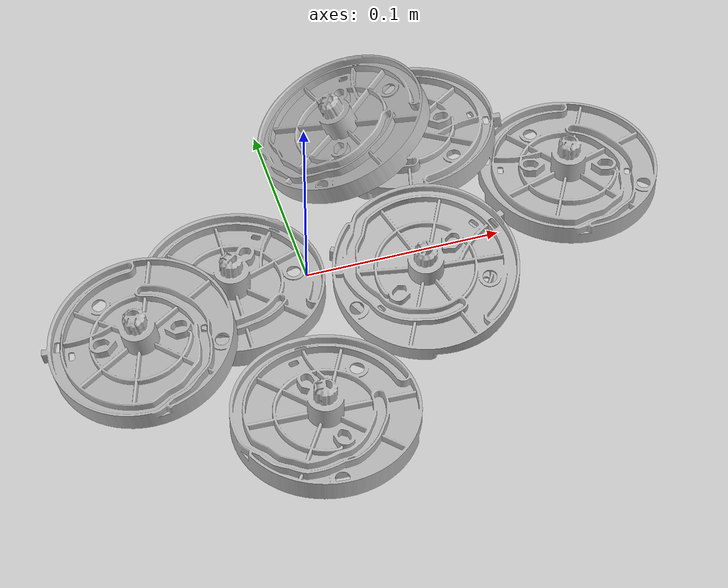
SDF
<sdf version="1.7">
 <world name="default">
  <light name="sun" type="directional">
   <pose>0 0 10 0 -0 0</pose>
   <diffuse>0.8 0.8 0.8 1</diffuse>
   <specular>0.2 0.2 0.2 1</specular>
   <attenuation>
    <range>1000</range>
    <constant>0.9</constant>
    <linear>0.01</linear>
    <quadratic>0.001</quadratic>
   </attenuation>
   <direction>-0.5 0.1 -0.9</direction>
   <spot><inner_angle>0</inner_angle><outer_angle>0</outer_angle><falloff>0</falloff></spot>
  </light>
  <model name="ground_plane">
   <static>1</static>
   <link name="link">
    <collision name="collision">
     <geometry><plane><normal>0 0 1</normal><size>100 100</size></plane></geometry>
     <surface>
      <contact><collide_bitmask>65535</collide_bitmask></contact>
      <friction><ode><mu>100</mu><mu2>50</mu2></ode></friction>
     </surface>
    </collision>
    <visual name="visual">
     <cast_shadows>0</cast_shadows>
     <geometry><plane><normal>0 0 1</normal><size>100 100</size></plane></geometry>
     <material>
      <script><uri>file://media/materials/scripts/gazebo.material</uri><name>Gazebo/Grey</name></script>
     </material>
    </visual>
   </link>
  </model>
  <gravity>0 0 -9.8</gravity>
  <magnetic_field>6e-06 2.3e-05 -4.2e-05</magnetic_field>
  <atmosphere type="adiabatic"/>
  <physics type="ode">
   <max_step_size>0.001</max_step_size>
   <real_time_factor>1</real_time_factor>
   <real_time_update_rate>1000</real_time_update_rate>
  </physics>
  <scene><ambient>0.4 0.4 0.4 1</ambient><background>0.7 0.7 0.7 1</background><shadows>1</shadows></scene>
  <spherical_coordinates>
   <surface_model>EARTH_WGS84</surface_model>
   <latitude_deg>0</latitude_deg>
   <longitude_deg>0</longitude_deg>
   <elevation>0</elevation>
   <heading_deg>0</heading_deg>
  </spherical_coordinates>
  <model name="HV8">
   <pose>0.146724 0.026027 4e-06 3.4e-05 -0.000127 1.30733</pose>
   <static>0</static>
   <link name="HV8">
    <inertial>
     <mass>0.2</mass>
     <inertia><ixx>0.001</ixx><ixy>0</ixy><ixz>0</ixz><iyy>0.001</iyy><iyz>0</iyz><izz>0.001</izz></inertia>
    </inertial>
    <collision name="collishin">
     <geometry><mesh><uri>model://HV8/meshes/HV8_1.stl</uri></mesh></geometry>
    </collision>
    <visual name="visual"><geometry><mesh><uri>model://HV8/meshes/HV8_1.stl</uri></mesh></geometry></visual>
   </link>
  </model>
  <model name="HV8_0">
   <pose>-0.089693 -0.03049 0.008632 -0.164191 -0.095968 1.47064</pose>
   <static>0</static>
   <link name="HV8">
    <inertial>
     <mass>0.2</mass>
     <inertia><ixx>0.001</ixx><ixy>0</ixy><ixz>0</ixz><iyy>0.001</iyy><iyz>0</iyz><izz>0.001</izz></inertia>
    </inertial>
    <collision name="collishin">
     <geometry><mesh><uri>model://HV8/meshes/HV8_1.stl</uri></mesh></geometry>
    </collision>
    <visual name="visual"><geometry><mesh><uri>model://HV8/meshes/HV8_1.stl</uri></mesh></geometry></visual>
   </link>
  </model>
  <model name="HV8_1">
   <pose>0.074413 0.069717 0.00576 0.111668 -0.061312 -1.58228</pose>
   <static>0</static>
   <link name="HV8">
    <inertial>
     <mass>0.2</mass>
     <inertia><ixx>0.001</ixx><ixy>0</ixy><ixz>0</ixz><iyy>0.001</iyy><iyz>0</iyz><izz>0.001</izz></inertia>
    </inertial>
    <collision name="collishin">
     <geometry><mesh><uri>model://HV8/meshes/HV8_1.stl</uri></mesh></geometry>
    </collision>
    <visual name="visual"><geometry><mesh><uri>model://HV8/meshes/HV8_1.stl</uri></mesh></geometry></visual>
   </link>
  </model>
  <model name="HV8_2">
   <pose>0.051095 -0.033651 0.018719 0.203553 0.149361 -1.01861</pose>
   <static>0</static>
   <link name="HV8">
    <inertial>
     <mass>0.2</mass>
     <inertia><ixx>0.001</ixx><ixy>0</ixy><ixz>0</ixz><iyy>0.001</iyy><iyz>0</iyz><izz>0.001</izz></inertia>
    </inertial>
    <collision name="collishin">
     <geometry><mesh><uri>model://HV8/meshes/HV8_1.stl</uri></mesh></geometry>
    </collision>
    <visual name="visual"><geometry><mesh><uri>model://HV8/meshes/HV8_1.stl</uri></mesh></geometry></visual>
   </link>
  </model>
  <model name="HV8_3">
   <pose>0.055621 -0.019476 -3e-06 5.4e-05 -3.9e-05 1.12233</pose>
   <static>0</static>
   <link name="HV8">
    <inertial>
     <mass>0.2</mass>
     <inertia><ixx>0.001</ixx><ixy>0</ixy><ixz>0</ixz><iyy>0.001</iyy><iyz>0</iyz><izz>0.001</izz></inertia>
    </inertial>
    <collision name="collishin">
     <geometry><mesh><uri>model://HV8/meshes/HV8_1.stl</uri></mesh></geometry>
    </collision>
    <visual name="visual"><geometry><mesh><uri>model://HV8/meshes/HV8_1.stl</uri></mesh></geometry></visual>
   </link>
  </model>
  <model name="HV8_4">
   <pose>-0.038642 -0.003748 0.001046 0.011694 -0.019777 -0.584773</pose>
   <static>0</static>
   <link name="HV8">
    <inertial>
     <mass>0.2</mass>
     <inertia><ixx>0.001</ixx><ixy>0</ixy><ixz>0</ixz><iyy>0.001</iyy><iyz>0</iyz><izz>0.001</izz></inertia>
    </inertial>
    <collision name="collishin">
     <geometry><mesh><uri>model://HV8/meshes/HV8_1.stl</uri></mesh></geometry>
    </collision>
    <visual name="visual"><geometry><mesh><uri>model://HV8/meshes/HV8_1.stl</uri></mesh></geometry></visual>
   </link>
  </model>
  <model name="HV8_5">
   <pose>-0.017219 -0.093097 3e-06 -0.000178 -8e-05 0.192514</pose>
   <static>0</static>
   <link name="HV8">
    <inertial>
     <mass>0.2</mass>
     <inertia><ixx>0.001</ixx><ixy>0</ixy><ixz>0</ixz><iyy>0.001</iyy><iyz>0</iyz><izz>0.001</izz></inertia>
    </inertial>
    <collision name="collishin">
     <geometry><mesh><uri>model://HV8/meshes/HV8_1.stl</uri></mesh></geometry>
    </collision>
    <visual name="visual"><geometry><mesh><uri>model://HV8/meshes/HV8_1.stl</uri></mesh></geometry></visual>
   </link>
  </model>
  <model name="HV8_6">
   <pose>0.042514 0.073088 0.0167 0.023766 -0.374894 -0.298743</pose>
   <static>0</static>
   <link name="HV8">
    <inertial>
     <mass>0.2</mass>
     <inertia><ixx>0.001</ixx><ixy>0</ixy><ixz>0</ixz><iyy>0.001</iyy><iyz>0</iyz><izz>0.001</izz></inertia>
    </inertial>
    <collision name="collishin">
     <geometry><mesh><uri>model://HV8/meshes/HV8_1.stl</uri></mesh></geometry>
    </collision>
    <visual name="visual"><geometry><mesh><uri>model://HV8/meshes/HV8_1.stl</uri></mesh></geometry></visual>
   </link>
  </model>
 </world>
</sdf>
